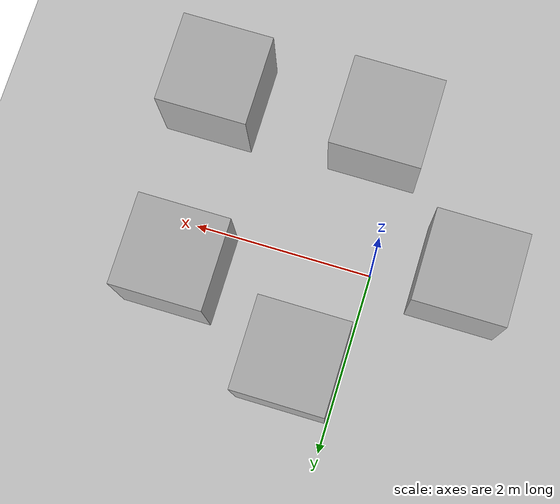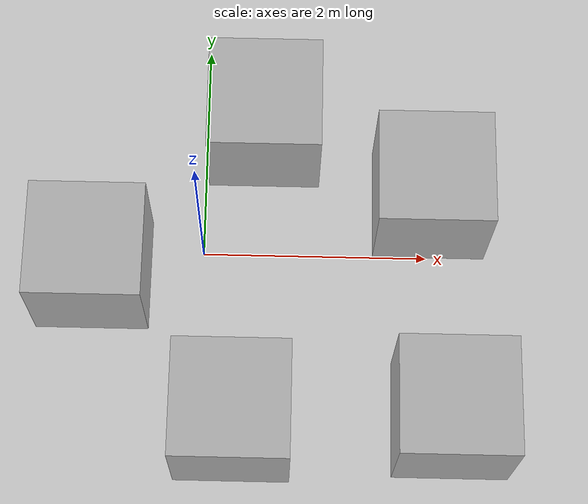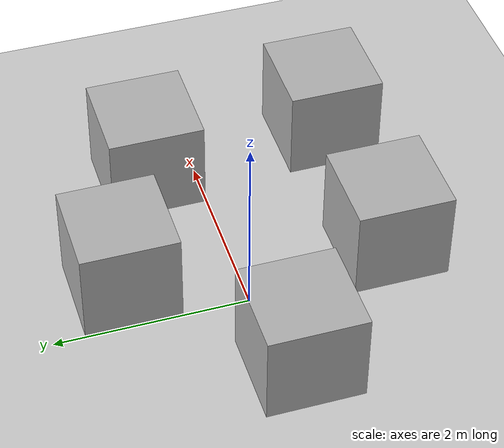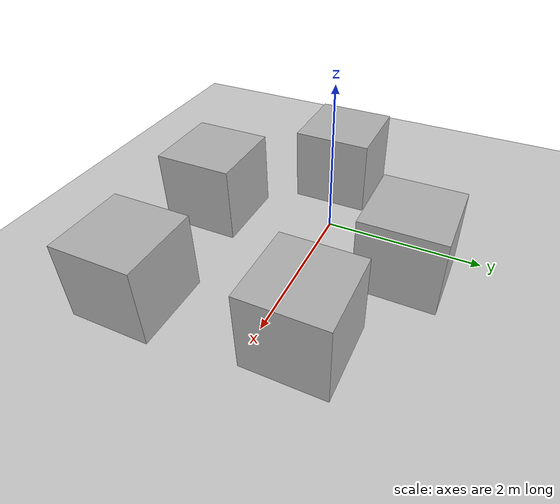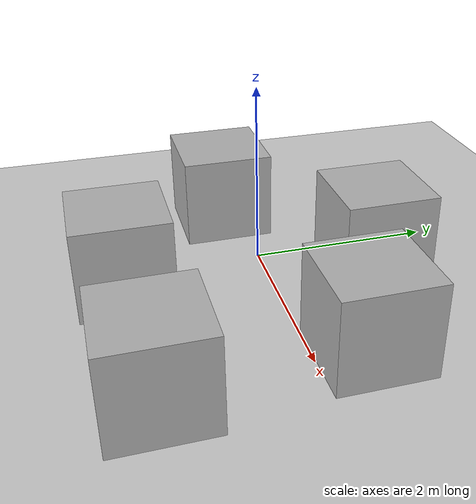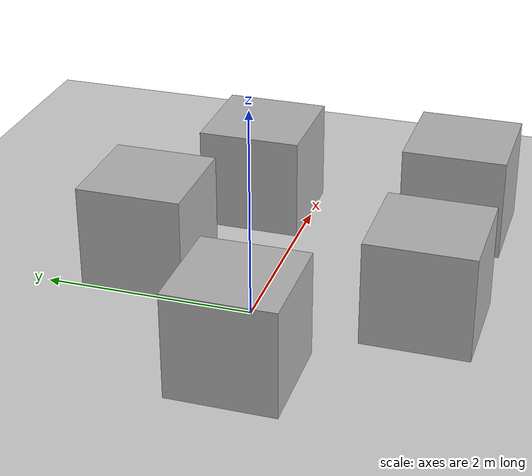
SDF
<sdf version='1.10'>
  <world name='empty'>
    <physics name='1ms' type='ignored'>
      <max_step_size>0.001</max_step_size>
      <real_time_factor>1</real_time_factor>
      <real_time_update_rate>1000</real_time_update_rate>
    </physics>
    <plugin name='gz::sim::systems::Physics' filename='gz-sim-physics-system'/>
    <plugin name='gz::sim::systems::UserCommands' filename='gz-sim-user-commands-system'/>
    <plugin name='gz::sim::systems::SceneBroadcaster' filename='gz-sim-scene-broadcaster-system'/>
    <plugin name='gz::sim::systems::Contact' filename='gz-sim-contact-system'/>
    <gravity>0 0 -9.8000000000000007</gravity>
    <magnetic_field>5.5644999999999998e-06 2.2875799999999999e-05 -4.2388400000000002e-05</magnetic_field>
    <atmosphere type='adiabatic'/>
    <scene>
      <ambient>0.400000006 0.400000006 0.400000006 1</ambient>
      <background>0.699999988 0.699999988 0.699999988 1</background>
      <shadows>true</shadows>
    </scene>
    <model name='ground_plane'>
      <static>true</static>
      <link name='link'>
        <collision name='collision'>
          <geometry>
            <plane>
              <normal>0 0 1</normal>
              <size>100 100</size>
            </plane>
          </geometry>
          <surface>
            <friction>
              <ode/>
            </friction>
            <bounce/>
            <contact/>
          </surface>
        </collision>
        <visual name='visual'>
          <geometry>
            <plane>
              <normal>0 0 1</normal>
              <size>100 100</size>
            </plane>
          </geometry>
          <material>
            <ambient>0.800000012 0.800000012 0.800000012 1</ambient>
            <diffuse>0.800000012 0.800000012 0.800000012 1</diffuse>
            <specular>0.800000012 0.800000012 0.800000012 1</specular>
          </material>
        </visual>
        <pose>0 0 0 0 0 0</pose>
        <inertial>
          <pose>0 0 0 0 0 0</pose>
          <mass>1</mass>
          <inertia>
            <ixx>1</ixx>
            <ixy>0</ixy>
            <ixz>0</ixz>
            <iyy>1</iyy>
            <iyz>0</iyz>
            <izz>1</izz>
          </inertia>
        </inertial>
        <enable_wind>false</enable_wind>
      </link>
      <pose>0 0 0 0 0 0</pose>
      <self_collide>false</self_collide>
    </model>
    <model name='box'>
      <pose>2.0170400142669678 0.51211404800415039 0.49999999019962582 2.5482602999352752e-17 -2.942196433525136e-17 5.1903963614946472e-18</pose>
      <link name='box_link'>
        <inertial>
          <inertia>
            <ixx>0.16666</ixx>
            <ixy>0</ixy>
            <ixz>0</ixz>
            <iyy>0.16666</iyy>
            <iyz>0</iyz>
            <izz>0.16666</izz>
          </inertia>
          <mass>1</mass>
          <pose>0 0 0 0 0 0</pose>
        </inertial>
        <collision name='box_collision'>
          <geometry>
            <box>
              <size>1 1 1</size>
            </box>
          </geometry>
          <surface>
            <friction>
              <ode/>
            </friction>
            <bounce/>
            <contact/>
          </surface>
        </collision>
        <visual name='box_visual'>
          <geometry>
            <box>
              <size>1 1 1</size>
            </box>
          </geometry>
          <material>
            <ambient>0.300000012 0.300000012 0.300000012 1</ambient>
            <diffuse>0.699999988 0.699999988 0.699999988 1</diffuse>
            <specular>1 1 1 1</specular>
          </material>
        </visual>
        <pose>0 0 0 0 0 0</pose>
        <enable_wind>false</enable_wind>
      </link>
      <static>false</static>
      <self_collide>false</self_collide>
    </model>
    <model name='box_1'>
      <pose>2.1786930778595699 -1.4908936234431951 0.49999999019962704 -5.5016365412104462e-17 -1.3289093993430515e-19 -1.353261560492602e-17</pose>
      <link name='box_link'>
        <inertial>
          <inertia>
            <ixx>0.16666</ixx>
            <ixy>0</ixy>
            <ixz>0</ixz>
            <iyy>0.16666</iyy>
            <iyz>0</iyz>
            <izz>0.16666</izz>
          </inertia>
          <mass>1</mass>
        </inertial>
        <collision name='box_collision'>
          <geometry>
            <box>
              <size>1 1 1</size>
            </box>
          </geometry>
          <surface>
            <friction>
              <ode/>
            </friction>
            <bounce/>
            <contact/>
          </surface>
        </collision>
        <visual name='box_visual'>
          <geometry>
            <box>
              <size>1 1 1</size>
            </box>
          </geometry>
          <material>
            <ambient>0.300000012 0.300000012 0.300000012 1</ambient>
            <diffuse>0.699999988 0.699999988 0.699999988 1</diffuse>
            <specular>1 1 1 1</specular>
          </material>
        </visual>
      </link>
      <static>false</static>
      <self_collide>false</self_collide>
    </model>
    <model name='box_2'>
      <pose>0.30037984129730649 -1.5543222500828018 0.49999999019962743 5.4911568190265306e-17 5.9197108289302632e-20 1.273707958969106e-17</pose>
      <link name='box_link'>
        <inertial>
          <inertia>
            <ixx>0.16666</ixx>
            <ixy>0</ixy>
            <ixz>0</ixz>
            <iyy>0.16666</iyy>
            <iyz>0</iyz>
            <izz>0.16666</izz>
          </inertia>
          <mass>1</mass>
        </inertial>
        <collision name='box_collision'>
          <geometry>
            <box>
              <size>1 1 1</size>
            </box>
          </geometry>
          <surface>
            <friction>
              <ode/>
            </friction>
            <bounce/>
            <contact/>
          </surface>
        </collision>
        <visual name='box_visual'>
          <geometry>
            <box>
              <size>1 1 1</size>
            </box>
          </geometry>
          <material>
            <ambient>0.300000012 0.300000012 0.300000012 1</ambient>
            <diffuse>0.699999988 0.699999988 0.699999988 1</diffuse>
            <specular>1 1 1 1</specular>
          </material>
        </visual>
      </link>
      <static>false</static>
      <self_collide>false</self_collide>
    </model>
    <model name='box_3'>
      <pose>-0.97061260707860053 -0.20900743251808951 0.49999999019962676 -5.5292578780727413e-17 -1.5140574250743093e-19 -8.8508825262752724e-18</pose>
      <link name='box_link'>
        <inertial>
          <inertia>
            <ixx>0.16666</ixx>
            <ixy>0</ixy>
            <ixz>0</ixz>
            <iyy>0.16666</iyy>
            <iyz>0</iyz>
            <izz>0.16666</izz>
          </inertia>
          <mass>1</mass>
        </inertial>
        <collision name='box_collision'>
          <geometry>
            <box>
              <size>1 1 1</size>
            </box>
          </geometry>
          <surface>
            <friction>
              <ode/>
            </friction>
            <bounce/>
            <contact/>
          </surface>
        </collision>
        <visual name='box_visual'>
          <geometry>
            <box>
              <size>1 1 1</size>
            </box>
          </geometry>
          <material>
            <ambient>0.300000012 0.300000012 0.300000012 1</ambient>
            <diffuse>0.699999988 0.699999988 0.699999988 1</diffuse>
            <specular>1 1 1 1</specular>
          </material>
        </visual>
      </link>
      <static>false</static>
      <self_collide>false</self_collide>
    </model>
    <model name='box_4'>
      <pose>0.52554055145749856 1.1765098736903252 0.49999999019962682 -5.3507471445998076e-19 5.4935089753545717e-17 2.4671415570727421e-18</pose>
      <link name='box_link'>
        <inertial>
          <inertia>
            <ixx>0.16666</ixx>
            <ixy>0</ixy>
            <ixz>0</ixz>
            <iyy>0.16666</iyy>
            <iyz>0</iyz>
            <izz>0.16666</izz>
          </inertia>
          <mass>1</mass>
        </inertial>
        <collision name='box_collision'>
          <geometry>
            <box>
              <size>1 1 1</size>
            </box>
          </geometry>
          <surface>
            <friction>
              <ode/>
            </friction>
            <bounce/>
            <contact/>
          </surface>
        </collision>
        <visual name='box_visual'>
          <geometry>
            <box>
              <size>1 1 1</size>
            </box>
          </geometry>
          <material>
            <ambient>0.300000012 0.300000012 0.300000012 1</ambient>
            <diffuse>0.699999988 0.699999988 0.699999988 1</diffuse>
            <specular>1 1 1 1</specular>
          </material>
        </visual>
      </link>
      <static>false</static>
      <self_collide>false</self_collide>
    </model>
    <light name='sun' type='directional'>
      <pose>0 0 10 0 0 0</pose>
      <cast_shadows>true</cast_shadows>
      <intensity>1</intensity>
      <direction>-0.5 0.10000000000000001 -0.90000000000000002</direction>
      <diffuse>0.800000012 0.800000012 0.800000012 1</diffuse>
      <specular>0.200000003 0.200000003 0.200000003 1</specular>
      <attenuation>
        <range>1000</range>
        <linear>0.01</linear>
        <constant>0.90000000000000002</constant>
        <quadratic>0.001</quadratic>
      </attenuation>
      <spot>
        <inner_angle>0</inner_angle>
        <outer_angle>0</outer_angle>
        <falloff>0</falloff>
      </spot>
    </light>
    <light name='directionallight' type='directional'>
      <pose>2.6002993677850186 -0.12436188152039895 2 0 0 0</pose>
      <cast_shadows>true</cast_shadows>
      <intensity>1</intensity>
      <direction>0 0 -1</direction>
      <diffuse>0.800000012 0.800000012 0.800000012 1</diffuse>
      <specular>0.200000003 0.200000003 0.200000003 1</specular>
      <attenuation>
        <range>1000</range>
        <linear>0.01</linear>
        <constant>0.90000000000000002</constant>
        <quadratic>0.001</quadratic>
      </attenuation>
      <spot>
        <inner_angle>0</inner_angle>
        <outer_angle>0</outer_angle>
        <falloff>0</falloff>
      </spot>
    </light>
  </world>
</sdf>
